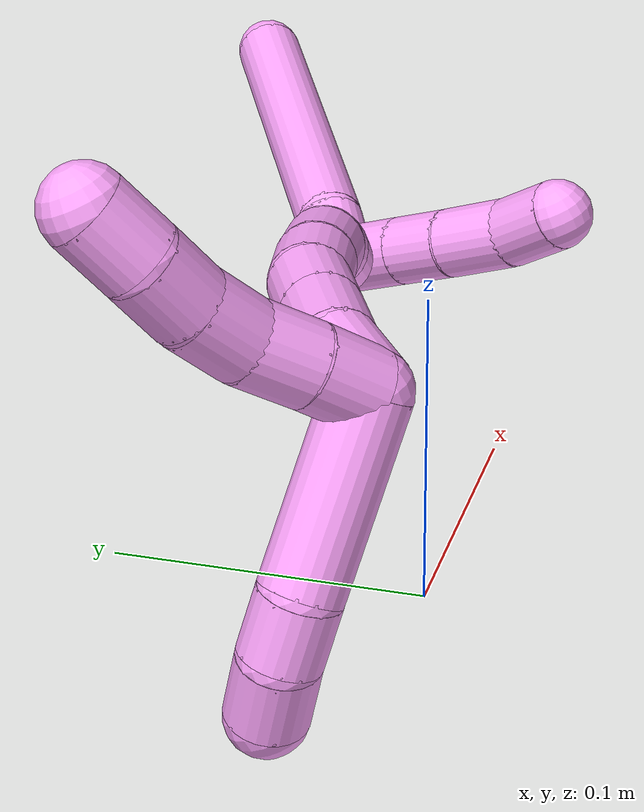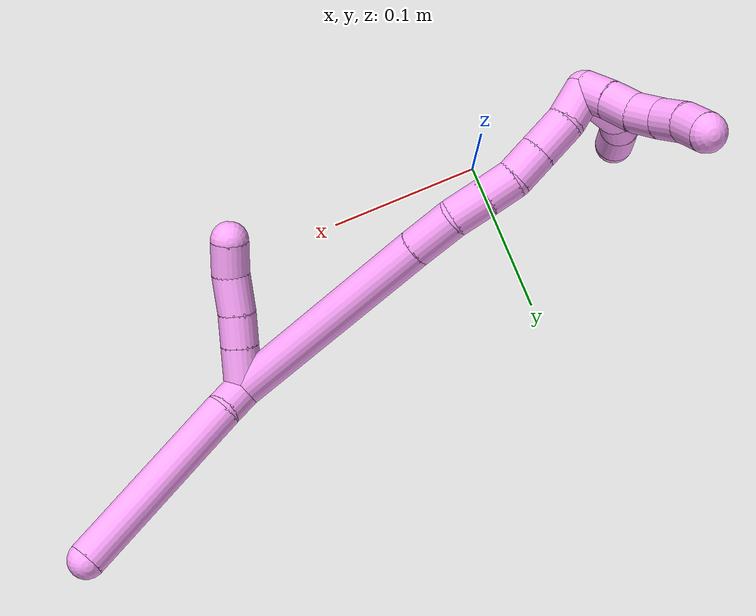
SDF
<sdf version="1.7">
 <world name="default">
  <model name="4">
   <static>0</static>
   <link name="4">
    <collision name="collision-cylinder-e_1_2_8">
     <pose>0.008221 -0.003827 0.005295 0.625853 0.899298 0.30981</pose>
     <geometry><cylinder><radius>0.0125</radius><length>0.021002</length></cylinder></geometry>
     <surface>
      <friction><ode><mu>1.16</mu><mu2>1.16</mu2><slip1>0</slip1><slip2>0</slip2></ode></friction>
      <contact><ode><kp>1e+06</kp><kd>1</kd><max_vel>0</max_vel><min_depth>0.001</min_depth></ode></contact>
     </surface>
    </collision>
    <visual name="visual-cylinder-e_1_2_8">
     <pose>0.008221 -0.003827 0.005295 0.625853 0.899298 0.30981</pose>
     <geometry><cylinder><radius>0.0125</radius><length>0.021002</length></cylinder></geometry>
     <material><ambient>1 0.65098 0.996078 1</ambient></material>
    </visual>
    <collision name="collision-cylinder-e_2_8_6">
     <pose>0.074339 -0.027514 0.030928 0.7735 1.11438 0.496992</pose>
     <geometry><cylinder><radius>0.0125</radius><length>0.128998</length></cylinder></geometry>
     <surface>
      <friction><ode><mu>1.16</mu><mu2>1.16</mu2><slip1>0</slip1><slip2>0</slip2></ode></friction>
      <contact><ode><kp>1e+06</kp><kd>1</kd><max_vel>0</max_vel><min_depth>0.001</min_depth></ode></contact>
     </surface>
    </collision>
    <visual name="visual-cylinder-e_2_8_6">
     <pose>0.074339 -0.027514 0.030928 0.7735 1.11438 0.496992</pose>
     <geometry><cylinder><radius>0.0125</radius><length>0.128998</length></cylinder></geometry>
     <material><ambient>1 0.65098 0.996078 1</ambient></material>
    </visual>
    <collision name="collision-cylinder-e_1_2_9">
     <pose>-0.012218 -0.008139 -0.000381 1.61755 -0.982642 -1.02205</pose>
     <geometry><cylinder><radius>0.0125</radius><length>0.02937</length></cylinder></geometry>
     <surface>
      <friction><ode><mu>1.16</mu><mu2>1.16</mu2><slip1>0</slip1><slip2>0</slip2></ode></friction>
      <contact><ode><kp>1e+06</kp><kd>1</kd><max_vel>0</max_vel><min_depth>0.001</min_depth></ode></contact>
     </surface>
    </collision>
    <visual name="visual-cylinder-e_1_2_9">
     <pose>-0.012218 -0.008139 -0.000381 1.61755 -0.982642 -1.02205</pose>
     <geometry><cylinder><radius>0.0125</radius><length>0.02937</length></cylinder></geometry>
     <material><ambient>1 0.65098 0.996078 1</ambient></material>
    </visual>
    <collision name="collision-cylinder-e_2_9_10">
     <pose>-0.033426 -0.022262 -0.001052 1.61931 -0.982961 -1.02389</pose>
     <geometry><cylinder><radius>0.0125</radius><length>0.021609</length></cylinder></geometry>
     <surface>
      <friction><ode><mu>1.16</mu><mu2>1.16</mu2><slip1>0</slip1><slip2>0</slip2></ode></friction>
      <contact><ode><kp>1e+06</kp><kd>1</kd><max_vel>0</max_vel><min_depth>0.001</min_depth></ode></contact>
     </surface>
    </collision>
    <visual name="visual-cylinder-e_2_9_10">
     <pose>-0.033426 -0.022262 -0.001052 1.61931 -0.982961 -1.02389</pose>
     <geometry><cylinder><radius>0.0125</radius><length>0.021609</length></cylinder></geometry>
     <material><ambient>1 0.65098 0.996078 1</ambient></material>
    </visual>
    <collision name="collision-cylinder-e_3_10_11">
     <pose>-0.05271 -0.036206 -0.001853 1.63483 -0.911609 -0.963243</pose>
     <geometry><cylinder><radius>0.0125</radius><length>0.026044</length></cylinder></geometry>
     <surface>
      <friction><ode><mu>1.16</mu><mu2>1.16</mu2><slip1>0</slip1><slip2>0</slip2></ode></friction>
      <contact><ode><kp>1e+06</kp><kd>1</kd><max_vel>0</max_vel><min_depth>0.001</min_depth></ode></contact>
     </surface>
    </collision>
    <visual name="visual-cylinder-e_3_10_11">
     <pose>-0.05271 -0.036206 -0.001853 1.63483 -0.911609 -0.963243</pose>
     <geometry><cylinder><radius>0.0125</radius><length>0.026044</length></cylinder></geometry>
     <material><ambient>1 0.65098 0.996078 1</ambient></material>
    </visual>
    <collision name="collision-cylinder-e_4_11_5">
     <pose>-0.072623 -0.050181 -0.000553 1.27845 -0.9922 -0.765034</pose>
     <geometry><cylinder><radius>0.0125</radius><length>0.022977</length></cylinder></geometry>
     <surface>
      <friction><ode><mu>1.16</mu><mu2>1.16</mu2><slip1>0</slip1><slip2>0</slip2></ode></friction>
      <contact><ode><kp>1e+06</kp><kd>1</kd><max_vel>0</max_vel><min_depth>0.001</min_depth></ode></contact>
     </surface>
    </collision>
    <visual name="visual-cylinder-e_4_11_5">
     <pose>-0.072623 -0.050181 -0.000553 1.27845 -0.9922 -0.765034</pose>
     <geometry><cylinder><radius>0.0125</radius><length>0.022977</length></cylinder></geometry>
     <material><ambient>1 0.65098 0.996078 1</ambient></material>
    </visual>
    <collision name="collision-cylinder-e_1_2_12">
     <pose>-0.069131 0.019422 0.025522 -0.650498 -1.13643 0.42413</pose>
     <geometry><cylinder><radius>0.0125</radius><length>0.152416</length></cylinder></geometry>
     <surface>
      <friction><ode><mu>1.16</mu><mu2>1.16</mu2><slip1>0</slip1><slip2>0</slip2></ode></friction>
      <contact><ode><kp>1e+06</kp><kd>1</kd><max_vel>0</max_vel><min_depth>0.001</min_depth></ode></contact>
     </surface>
    </collision>
    <visual name="visual-cylinder-e_1_2_12">
     <pose>-0.069131 0.019422 0.025522 -0.650498 -1.13643 0.42413</pose>
     <geometry><cylinder><radius>0.0125</radius><length>0.152416</length></cylinder></geometry>
     <material><ambient>1 0.65098 0.996078 1</ambient></material>
    </visual>
    <collision name="collision-cylinder-e_2_12_13">
     <pose>-0.152406 0.043107 0.056405 -0.671778 -1.1198 0.430868</pose>
     <geometry><cylinder><radius>0.0125</radius><length>0.031432</length></cylinder></geometry>
     <surface>
      <friction><ode><mu>1.16</mu><mu2>1.16</mu2><slip1>0</slip1><slip2>0</slip2></ode></friction>
      <contact><ode><kp>1e+06</kp><kd>1</kd><max_vel>0</max_vel><min_depth>0.001</min_depth></ode></contact>
     </surface>
    </collision>
    <visual name="visual-cylinder-e_2_12_13">
     <pose>-0.152406 0.043107 0.056405 -0.671778 -1.1198 0.430868</pose>
     <geometry><cylinder><radius>0.0125</radius><length>0.031432</length></cylinder></geometry>
     <material><ambient>1 0.65098 0.996078 1</ambient></material>
    </visual>
    <collision name="collision-cylinder-e_3_13_14">
     <pose>-0.177097 0.052455 0.063731 -1.20214 -1.0937 0.790907</pose>
     <geometry><cylinder><radius>0.0125</radius><length>0.023743</length></cylinder></geometry>
     <surface>
      <friction><ode><mu>1.16</mu><mu2>1.16</mu2><slip1>0</slip1><slip2>0</slip2></ode></friction>
      <contact><ode><kp>1e+06</kp><kd>1</kd><max_vel>0</max_vel><min_depth>0.001</min_depth></ode></contact>
     </surface>
    </collision>
    <visual name="visual-cylinder-e_3_13_14">
     <pose>-0.177097 0.052455 0.063731 -1.20214 -1.0937 0.790907</pose>
     <geometry><cylinder><radius>0.0125</radius><length>0.023743</length></cylinder></geometry>
     <material><ambient>1 0.65098 0.996078 1</ambient></material>
    </visual>
    <collision name="collision-cylinder-e_4_14_15">
     <pose>-0.196789 0.062161 0.066335 -1.43319 -1.09918 0.980273</pose>
     <geometry><cylinder><radius>0.0125</radius><length>0.020534</length></cylinder></geometry>
     <surface>
      <friction><ode><mu>1.16</mu><mu2>1.16</mu2><slip1>0</slip1><slip2>0</slip2></ode></friction>
      <contact><ode><kp>1e+06</kp><kd>1</kd><max_vel>0</max_vel><min_depth>0.001</min_depth></ode></contact>
     </surface>
    </collision>
    <visual name="visual-cylinder-e_4_14_15">
     <pose>-0.196789 0.062161 0.066335 -1.43319 -1.09918 0.980273</pose>
     <geometry><cylinder><radius>0.0125</radius><length>0.020534</length></cylinder></geometry>
     <material><ambient>1 0.65098 0.996078 1</ambient></material>
    </visual>
    <collision name="collision-cylinder-e_5_15_16">
     <pose>-0.216593 0.069748 0.06574 -1.96515 -1.27791 1.67841</pose>
     <geometry><cylinder><radius>0.0125</radius><length>0.022264</length></cylinder></geometry>
     <surface>
      <friction><ode><mu>1.16</mu><mu2>1.16</mu2><slip1>0</slip1><slip2>0</slip2></ode></friction>
      <contact><ode><kp>1e+06</kp><kd>1</kd><max_vel>0</max_vel><min_depth>0.001</min_depth></ode></contact>
     </surface>
    </collision>
    <visual name="visual-cylinder-e_5_15_16">
     <pose>-0.216593 0.069748 0.06574 -1.96515 -1.27791 1.67841</pose>
     <geometry><cylinder><radius>0.0125</radius><length>0.022264</length></cylinder></geometry>
     <material><ambient>1 0.65098 0.996078 1</ambient></material>
    </visual>
    <collision name="collision-cylinder-e_6_16_17">
     <pose>-0.23956 0.076143 0.063082 -1.96427 -1.27796 1.67752</pose>
     <geometry><cylinder><radius>0.0125</radius><length>0.025713</length></cylinder></geometry>
     <surface>
      <friction><ode><mu>1.16</mu><mu2>1.16</mu2><slip1>0</slip1><slip2>0</slip2></ode></friction>
      <contact><ode><kp>1e+06</kp><kd>1</kd><max_vel>0</max_vel><min_depth>0.001</min_depth></ode></contact>
     </surface>
    </collision>
    <visual name="visual-cylinder-e_6_16_17">
     <pose>-0.23956 0.076143 0.063082 -1.96427 -1.27796 1.67752</pose>
     <geometry><cylinder><radius>0.0125</radius><length>0.025713</length></cylinder></geometry>
     <material><ambient>1 0.65098 0.996078 1</ambient></material>
    </visual>
    <collision name="collision-cylinder-e_7_17_1">
     <pose>-0.263257 0.080927 0.058301 -2.75797 -1.26287 2.62248</pose>
     <geometry><cylinder><radius>0.0125</radius><length>0.023898</length></cylinder></geometry>
     <surface>
      <friction><ode><mu>1.16</mu><mu2>1.16</mu2><slip1>0</slip1><slip2>0</slip2></ode></friction>
      <contact><ode><kp>1e+06</kp><kd>1</kd><max_vel>0</max_vel><min_depth>0.001</min_depth></ode></contact>
     </surface>
    </collision>
    <visual name="visual-cylinder-e_7_17_1">
     <pose>-0.263257 0.080927 0.058301 -2.75797 -1.26287 2.62248</pose>
     <geometry><cylinder><radius>0.0125</radius><length>0.023898</length></cylinder></geometry>
     <material><ambient>1 0.65098 0.996078 1</ambient></material>
    </visual>
    <collision name="collision-cylinder-e_1_1_18">
     <pose>-0.275577 0.088397 0.0628 -0.661289 -0.093494 0.032112</pose>
     <geometry><cylinder><radius>0.0125</radius><length>0.02</length></cylinder></geometry>
     <surface>
      <friction><ode><mu>1.16</mu><mu2>1.16</mu2><slip1>0</slip1><slip2>0</slip2></ode></friction>
      <contact><ode><kp>1e+06</kp><kd>1</kd><max_vel>0</max_vel><min_depth>0.001</min_depth></ode></contact>
     </surface>
    </collision>
    <visual name="visual-cylinder-e_1_1_18">
     <pose>-0.275577 0.088397 0.0628 -0.661289 -0.093494 0.032112</pose>
     <geometry><cylinder><radius>0.0125</radius><length>0.02</length></cylinder></geometry>
     <material><ambient>1 0.65098 0.996078 1</ambient></material>
    </visual>
    <collision name="collision-cylinder-e_2_18_19">
     <pose>-0.276735 0.100919 0.078332 -0.69577 -0.022414 0.008128</pose>
     <geometry><cylinder><radius>0.0125</radius><length>0.02</length></cylinder></geometry>
     <surface>
      <friction><ode><mu>1.16</mu><mu2>1.16</mu2><slip1>0</slip1><slip2>0</slip2></ode></friction>
      <contact><ode><kp>1e+06</kp><kd>1</kd><max_vel>0</max_vel><min_depth>0.001</min_depth></ode></contact>
     </surface>
    </collision>
    <visual name="visual-cylinder-e_2_18_19">
     <pose>-0.276735 0.100919 0.078332 -0.69577 -0.022414 0.008128</pose>
     <geometry><cylinder><radius>0.0125</radius><length>0.02</length></cylinder></geometry>
     <material><ambient>1 0.65098 0.996078 1</ambient></material>
    </visual>
    <collision name="collision-cylinder-e_3_19_20">
     <pose>-0.278871 0.112191 0.094532 -0.518357 -0.192342 0.051145</pose>
     <geometry><cylinder><radius>0.0125</radius><length>0.02</length></cylinder></geometry>
     <surface>
      <friction><ode><mu>1.16</mu><mu2>1.16</mu2><slip1>0</slip1><slip2>0</slip2></ode></friction>
      <contact><ode><kp>1e+06</kp><kd>1</kd><max_vel>0</max_vel><min_depth>0.001</min_depth></ode></contact>
     </surface>
    </collision>
    <visual name="visual-cylinder-e_3_19_20">
     <pose>-0.278871 0.112191 0.094532 -0.518357 -0.192342 0.051145</pose>
     <geometry><cylinder><radius>0.0125</radius><length>0.02</length></cylinder></geometry>
     <material><ambient>1 0.65098 0.996078 1</ambient></material>
    </visual>
    <collision name="collision-cylinder-e_4_20_21">
     <pose>-0.282871 0.120485 0.112216 -0.358465 -0.210394 0.038255</pose>
     <geometry><cylinder><radius>0.0125</radius><length>0.02</length></cylinder></geometry>
     <surface>
      <friction><ode><mu>1.16</mu><mu2>1.16</mu2><slip1>0</slip1><slip2>0</slip2></ode></friction>
      <contact><ode><kp>1e+06</kp><kd>1</kd><max_vel>0</max_vel><min_depth>0.001</min_depth></ode></contact>
     </surface>
    </collision>
    <visual name="visual-cylinder-e_4_20_21">
     <pose>-0.282871 0.120485 0.112216 -0.358465 -0.210394 0.038255</pose>
     <geometry><cylinder><radius>0.0125</radius><length>0.02</length></cylinder></geometry>
     <material><ambient>1 0.65098 0.996078 1</ambient></material>
    </visual>
    <collision name="collision-cylinder-e_5_21_4">
     <pose>-0.284983 0.127294 0.130785 -0.344624 -0.002381 0.000414</pose>
     <geometry><cylinder><radius>0.0125</radius><length>0.02</length></cylinder></geometry>
     <surface>
      <friction><ode><mu>1.16</mu><mu2>1.16</mu2><slip1>0</slip1><slip2>0</slip2></ode></friction>
      <contact><ode><kp>1e+06</kp><kd>1</kd><max_vel>0</max_vel><min_depth>0.001</min_depth></ode></contact>
     </surface>
    </collision>
    <visual name="visual-cylinder-e_5_21_4">
     <pose>-0.284983 0.127294 0.130785 -0.344624 -0.002381 0.000414</pose>
     <geometry><cylinder><radius>0.0125</radius><length>0.02</length></cylinder></geometry>
     <material><ambient>1 0.65098 0.996078 1</ambient></material>
    </visual>
    <collision name="collision-cylinder-e_1_1_22">
     <pose>-0.273579 0.103075 0.034563 -2.34615 0.036562 -0.086984</pose>
     <geometry><cylinder><radius>0.0125</radius><length>0.058269</length></cylinder></geometry>
     <surface>
      <friction><ode><mu>1.16</mu><mu2>1.16</mu2><slip1>0</slip1><slip2>0</slip2></ode></friction>
      <contact><ode><kp>1e+06</kp><kd>1</kd><max_vel>0</max_vel><min_depth>0.001</min_depth></ode></contact>
     </surface>
    </collision>
    <visual name="visual-cylinder-e_1_1_22">
     <pose>-0.273579 0.103075 0.034563 -2.34615 0.036562 -0.086984</pose>
     <geometry><cylinder><radius>0.0125</radius><length>0.058269</length></cylinder></geometry>
     <material><ambient>1 0.65098 0.996078 1</ambient></material>
    </visual>
    <collision name="collision-cylinder-e_2_22_23">
     <pose>-0.269875 0.12997 0.006529 -2.46866 0.263248 -0.723685</pose>
     <geometry><cylinder><radius>0.0125</radius><length>0.020277</length></cylinder></geometry>
     <surface>
      <friction><ode><mu>1.16</mu><mu2>1.16</mu2><slip1>0</slip1><slip2>0</slip2></ode></friction>
      <contact><ode><kp>1e+06</kp><kd>1</kd><max_vel>0</max_vel><min_depth>0.001</min_depth></ode></contact>
     </surface>
    </collision>
    <visual name="visual-cylinder-e_2_22_23">
     <pose>-0.269875 0.12997 0.006529 -2.46866 0.263248 -0.723685</pose>
     <geometry><cylinder><radius>0.0125</radius><length>0.020277</length></cylinder></geometry>
     <material><ambient>1 0.65098 0.996078 1</ambient></material>
    </visual>
    <collision name="collision-cylinder-e_3_23_3">
     <pose>-0.262248 0.14039 -0.009583 -2.66942 0.483804 -1.59608</pose>
     <geometry><cylinder><radius>0.0125</radius><length>0.021454</length></cylinder></geometry>
     <surface>
      <friction><ode><mu>1.16</mu><mu2>1.16</mu2><slip1>0</slip1><slip2>0</slip2></ode></friction>
      <contact><ode><kp>1e+06</kp><kd>1</kd><max_vel>0</max_vel><min_depth>0.001</min_depth></ode></contact>
     </surface>
    </collision>
    <visual name="visual-cylinder-e_3_23_3">
     <pose>-0.262248 0.14039 -0.009583 -2.66942 0.483804 -1.59608</pose>
     <geometry><cylinder><radius>0.0125</radius><length>0.021454</length></cylinder></geometry>
     <material><ambient>1 0.65098 0.996078 1</ambient></material>
    </visual>
    <collision name="collision-sphere-3">
     <pose>-0.257258 0.144709 -0.01804 0 -0 0</pose>
     <geometry><sphere><radius>0.0125</radius></sphere></geometry>
     <surface>
      <friction><ode><mu>1.16</mu><mu2>1.16</mu2><slip1>0</slip1><slip2>0</slip2></ode></friction>
      <contact><ode><kp>1e+06</kp><kd>1</kd><max_vel>0</max_vel><min_depth>0.001</min_depth></ode></contact>
     </surface>
    </collision>
    <visual name="visual-sphere-3">
     <pose>-0.257258 0.144709 -0.01804 0 -0 0</pose>
     <geometry><sphere><radius>0.0125</radius></sphere></geometry>
     <material><ambient>1 0.65098 0.996078 1</ambient></material>
    </visual>
    <collision name="collision-sphere-23">
     <pose>-0.267237 0.136072 -0.001127 0 -0 0</pose>
     <geometry><sphere><radius>0.0125</radius></sphere></geometry>
     <surface>
      <friction><ode><mu>1.16</mu><mu2>1.16</mu2><slip1>0</slip1><slip2>0</slip2></ode></friction>
      <contact><ode><kp>1e+06</kp><kd>1</kd><max_vel>0</max_vel><min_depth>0.001</min_depth></ode></contact>
     </surface>
    </collision>
    <visual name="visual-sphere-23">
     <pose>-0.267237 0.136072 -0.001127 0 -0 0</pose>
     <geometry><sphere><radius>0.0125</radius></sphere></geometry>
     <material><ambient>1 0.65098 0.996078 1</ambient></material>
    </visual>
    <collision name="collision-sphere-22">
     <pose>-0.272514 0.123869 0.014184 0 -0 0</pose>
     <geometry><sphere><radius>0.0125</radius></sphere></geometry>
     <surface>
      <friction><ode><mu>1.16</mu><mu2>1.16</mu2><slip1>0</slip1><slip2>0</slip2></ode></friction>
      <contact><ode><kp>1e+06</kp><kd>1</kd><max_vel>0</max_vel><min_depth>0.001</min_depth></ode></contact>
     </surface>
    </collision>
    <visual name="visual-sphere-22">
     <pose>-0.272514 0.123869 0.014184 0 -0 0</pose>
     <geometry><sphere><radius>0.0125</radius></sphere></geometry>
     <material><ambient>1 0.65098 0.996078 1</ambient></material>
    </visual>
    <collision name="collision-sphere-4">
     <pose>-0.285007 0.130673 0.140197 0 -0 0</pose>
     <geometry><sphere><radius>0.0125</radius></sphere></geometry>
     <surface>
      <friction><ode><mu>1.16</mu><mu2>1.16</mu2><slip1>0</slip1><slip2>0</slip2></ode></friction>
      <contact><ode><kp>1e+06</kp><kd>1</kd><max_vel>0</max_vel><min_depth>0.001</min_depth></ode></contact>
     </surface>
    </collision>
    <visual name="visual-sphere-4">
     <pose>-0.285007 0.130673 0.140197 0 -0 0</pose>
     <geometry><sphere><radius>0.0125</radius></sphere></geometry>
     <material><ambient>1 0.65098 0.996078 1</ambient></material>
    </visual>
    <collision name="collision-sphere-21">
     <pose>-0.284959 0.123916 0.121373 0 -0 0</pose>
     <geometry><sphere><radius>0.0125</radius></sphere></geometry>
     <surface>
      <friction><ode><mu>1.16</mu><mu2>1.16</mu2><slip1>0</slip1><slip2>0</slip2></ode></friction>
      <contact><ode><kp>1e+06</kp><kd>1</kd><max_vel>0</max_vel><min_depth>0.001</min_depth></ode></contact>
     </surface>
    </collision>
    <visual name="visual-sphere-21">
     <pose>-0.284959 0.123916 0.121373 0 -0 0</pose>
     <geometry><sphere><radius>0.0125</radius></sphere></geometry>
     <material><ambient>1 0.65098 0.996078 1</ambient></material>
    </visual>
    <collision name="collision-sphere-20">
     <pose>-0.280782 0.117054 0.103058 0 -0 0</pose>
     <geometry><sphere><radius>0.0125</radius></sphere></geometry>
     <surface>
      <friction><ode><mu>1.16</mu><mu2>1.16</mu2><slip1>0</slip1><slip2>0</slip2></ode></friction>
      <contact><ode><kp>1e+06</kp><kd>1</kd><max_vel>0</max_vel><min_depth>0.001</min_depth></ode></contact>
     </surface>
    </collision>
    <visual name="visual-sphere-20">
     <pose>-0.280782 0.117054 0.103058 0 -0 0</pose>
     <geometry><sphere><radius>0.0125</radius></sphere></geometry>
     <material><ambient>1 0.65098 0.996078 1</ambient></material>
    </visual>
    <collision name="collision-sphere-11">
     <pose>-0.063004 -0.044165 -0.002363 0 -0 0</pose>
     <geometry><sphere><radius>0.0125</radius></sphere></geometry>
     <surface>
      <friction><ode><mu>1.16</mu><mu2>1.16</mu2><slip1>0</slip1><slip2>0</slip2></ode></friction>
      <contact><ode><kp>1e+06</kp><kd>1</kd><max_vel>0</max_vel><min_depth>0.001</min_depth></ode></contact>
     </surface>
    </collision>
    <visual name="visual-sphere-11">
     <pose>-0.063004 -0.044165 -0.002363 0 -0 0</pose>
     <geometry><sphere><radius>0.0125</radius></sphere></geometry>
     <material><ambient>1 0.65098 0.996078 1</ambient></material>
    </visual>
    <collision name="collision-sphere-10">
     <pose>-0.042417 -0.028247 -0.001343 0 -0 0</pose>
     <geometry><sphere><radius>0.0125</radius></sphere></geometry>
     <surface>
      <friction><ode><mu>1.16</mu><mu2>1.16</mu2><slip1>0</slip1><slip2>0</slip2></ode></friction>
      <contact><ode><kp>1e+06</kp><kd>1</kd><max_vel>0</max_vel><min_depth>0.001</min_depth></ode></contact>
     </surface>
    </collision>
    <visual name="visual-sphere-10">
     <pose>-0.042417 -0.028247 -0.001343 0 -0 0</pose>
     <geometry><sphere><radius>0.0125</radius></sphere></geometry>
     <material><ambient>1 0.65098 0.996078 1</ambient></material>
    </visual>
    <collision name="collision-sphere-6">
     <pose>0.132236 -0.047375 0.051267 0 -0 0</pose>
     <geometry><sphere><radius>0.0125</radius></sphere></geometry>
     <surface>
      <friction><ode><mu>1.16</mu><mu2>1.16</mu2><slip1>0</slip1><slip2>0</slip2></ode></friction>
      <contact><ode><kp>1e+06</kp><kd>1</kd><max_vel>0</max_vel><min_depth>0.001</min_depth></ode></contact>
     </surface>
    </collision>
    <visual name="visual-sphere-6">
     <pose>0.132236 -0.047375 0.051267 0 -0 0</pose>
     <geometry><sphere><radius>0.0125</radius></sphere></geometry>
     <material><ambient>1 0.65098 0.996078 1</ambient></material>
    </visual>
    <collision name="collision-sphere-9">
     <pose>-0.024435 -0.016278 -0.000762 0 -0 0</pose>
     <geometry><sphere><radius>0.0125</radius></sphere></geometry>
     <surface>
      <friction><ode><mu>1.16</mu><mu2>1.16</mu2><slip1>0</slip1><slip2>0</slip2></ode></friction>
      <contact><ode><kp>1e+06</kp><kd>1</kd><max_vel>0</max_vel><min_depth>0.001</min_depth></ode></contact>
     </surface>
    </collision>
    <visual name="visual-sphere-9">
     <pose>-0.024435 -0.016278 -0.000762 0 -0 0</pose>
     <geometry><sphere><radius>0.0125</radius></sphere></geometry>
     <material><ambient>1 0.65098 0.996078 1</ambient></material>
    </visual>
    <collision name="collision-sphere-2">
     <geometry><sphere><radius>0.0125</radius></sphere></geometry>
     <surface>
      <friction><ode><mu>1.16</mu><mu2>1.16</mu2><slip1>0</slip1><slip2>0</slip2></ode></friction>
      <contact><ode><kp>1e+06</kp><kd>1</kd><max_vel>0</max_vel><min_depth>0.001</min_depth></ode></contact>
     </surface>
    </collision>
    <visual name="visual-sphere-2">
     <geometry><sphere><radius>0.0125</radius></sphere></geometry>
     <material><ambient>1 0.65098 0.996078 1</ambient></material>
    </visual>
    <collision name="collision-sphere-19">
     <pose>-0.276959 0.107327 0.086005 0 -0 0</pose>
     <geometry><sphere><radius>0.0125</radius></sphere></geometry>
     <surface>
      <friction><ode><mu>1.16</mu><mu2>1.16</mu2><slip1>0</slip1><slip2>0</slip2></ode></friction>
      <contact><ode><kp>1e+06</kp><kd>1</kd><max_vel>0</max_vel><min_depth>0.001</min_depth></ode></contact>
     </surface>
    </collision>
    <visual name="visual-sphere-19">
     <pose>-0.276959 0.107327 0.086005 0 -0 0</pose>
     <geometry><sphere><radius>0.0125</radius></sphere></geometry>
     <material><ambient>1 0.65098 0.996078 1</ambient></material>
    </visual>
    <collision name="collision-sphere-8">
     <pose>0.016442 -0.007654 0.01059 0 -0 0</pose>
     <geometry><sphere><radius>0.0125</radius></sphere></geometry>
     <surface>
      <friction><ode><mu>1.16</mu><mu2>1.16</mu2><slip1>0</slip1><slip2>0</slip2></ode></friction>
      <contact><ode><kp>1e+06</kp><kd>1</kd><max_vel>0</max_vel><min_depth>0.001</min_depth></ode></contact>
     </surface>
    </collision>
    <visual name="visual-sphere-8">
     <pose>0.016442 -0.007654 0.01059 0 -0 0</pose>
     <geometry><sphere><radius>0.0125</radius></sphere></geometry>
     <material><ambient>1 0.65098 0.996078 1</ambient></material>
    </visual>
    <collision name="collision-sphere-5">
     <pose>-0.082241 -0.056197 0.001258 0 -0 0</pose>
     <geometry><sphere><radius>0.0125</radius></sphere></geometry>
     <surface>
      <friction><ode><mu>1.16</mu><mu2>1.16</mu2><slip1>0</slip1><slip2>0</slip2></ode></friction>
      <contact><ode><kp>1e+06</kp><kd>1</kd><max_vel>0</max_vel><min_depth>0.001</min_depth></ode></contact>
     </surface>
    </collision>
    <visual name="visual-sphere-5">
     <pose>-0.082241 -0.056197 0.001258 0 -0 0</pose>
     <geometry><sphere><radius>0.0125</radius></sphere></geometry>
     <material><ambient>1 0.65098 0.996078 1</ambient></material>
    </visual>
    <collision name="collision-sphere-12">
     <pose>-0.138262 0.038843 0.051043 0 -0 0</pose>
     <geometry><sphere><radius>0.0125</radius></sphere></geometry>
     <surface>
      <friction><ode><mu>1.16</mu><mu2>1.16</mu2><slip1>0</slip1><slip2>0</slip2></ode></friction>
      <contact><ode><kp>1e+06</kp><kd>1</kd><max_vel>0</max_vel><min_depth>0.001</min_depth></ode></contact>
     </surface>
    </collision>
    <visual name="visual-sphere-12">
     <pose>-0.138262 0.038843 0.051043 0 -0 0</pose>
     <geometry><sphere><radius>0.0125</radius></sphere></geometry>
     <material><ambient>1 0.65098 0.996078 1</ambient></material>
    </visual>
    <collision name="collision-sphere-13">
     <pose>-0.166551 0.04737 0.061766 0 -0 0</pose>
     <geometry><sphere><radius>0.0125</radius></sphere></geometry>
     <surface>
      <friction><ode><mu>1.16</mu><mu2>1.16</mu2><slip1>0</slip1><slip2>0</slip2></ode></friction>
      <contact><ode><kp>1e+06</kp><kd>1</kd><max_vel>0</max_vel><min_depth>0.001</min_depth></ode></contact>
     </surface>
    </collision>
    <visual name="visual-sphere-13">
     <pose>-0.166551 0.04737 0.061766 0 -0 0</pose>
     <geometry><sphere><radius>0.0125</radius></sphere></geometry>
     <material><ambient>1 0.65098 0.996078 1</ambient></material>
    </visual>
    <collision name="collision-sphere-14">
     <pose>-0.187643 0.05754 0.065695 0 -0 0</pose>
     <geometry><sphere><radius>0.0125</radius></sphere></geometry>
     <surface>
      <friction><ode><mu>1.16</mu><mu2>1.16</mu2><slip1>0</slip1><slip2>0</slip2></ode></friction>
      <contact><ode><kp>1e+06</kp><kd>1</kd><max_vel>0</max_vel><min_depth>0.001</min_depth></ode></contact>
     </surface>
    </collision>
    <visual name="visual-sphere-14">
     <pose>-0.187643 0.05754 0.065695 0 -0 0</pose>
     <geometry><sphere><radius>0.0125</radius></sphere></geometry>
     <material><ambient>1 0.65098 0.996078 1</ambient></material>
    </visual>
    <collision name="collision-sphere-15">
     <pose>-0.205935 0.066781 0.066975 0 -0 0</pose>
     <geometry><sphere><radius>0.0125</radius></sphere></geometry>
     <surface>
      <friction><ode><mu>1.16</mu><mu2>1.16</mu2><slip1>0</slip1><slip2>0</slip2></ode></friction>
      <contact><ode><kp>1e+06</kp><kd>1</kd><max_vel>0</max_vel><min_depth>0.001</min_depth></ode></contact>
     </surface>
    </collision>
    <visual name="visual-sphere-15">
     <pose>-0.205935 0.066781 0.066975 0 -0 0</pose>
     <geometry><sphere><radius>0.0125</radius></sphere></geometry>
     <material><ambient>1 0.65098 0.996078 1</ambient></material>
    </visual>
    <collision name="collision-sphere-16">
     <pose>-0.227251 0.072716 0.064505 0 -0 0</pose>
     <geometry><sphere><radius>0.0125</radius></sphere></geometry>
     <surface>
      <friction><ode><mu>1.16</mu><mu2>1.16</mu2><slip1>0</slip1><slip2>0</slip2></ode></friction>
      <contact><ode><kp>1e+06</kp><kd>1</kd><max_vel>0</max_vel><min_depth>0.001</min_depth></ode></contact>
     </surface>
    </collision>
    <visual name="visual-sphere-16">
     <pose>-0.227251 0.072716 0.064505 0 -0 0</pose>
     <geometry><sphere><radius>0.0125</radius></sphere></geometry>
     <material><ambient>1 0.65098 0.996078 1</ambient></material>
    </visual>
    <collision name="collision-sphere-17">
     <pose>-0.25187 0.079571 0.06166 0 -0 0</pose>
     <geometry><sphere><radius>0.0125</radius></sphere></geometry>
     <surface>
      <friction><ode><mu>1.16</mu><mu2>1.16</mu2><slip1>0</slip1><slip2>0</slip2></ode></friction>
      <contact><ode><kp>1e+06</kp><kd>1</kd><max_vel>0</max_vel><min_depth>0.001</min_depth></ode></contact>
     </surface>
    </collision>
    <visual name="visual-sphere-17">
     <pose>-0.25187 0.079571 0.06166 0 -0 0</pose>
     <geometry><sphere><radius>0.0125</radius></sphere></geometry>
     <material><ambient>1 0.65098 0.996078 1</ambient></material>
    </visual>
    <collision name="collision-sphere-1">
     <pose>-0.274644 0.082282 0.054943 0 -0 0</pose>
     <geometry><sphere><radius>0.0125</radius></sphere></geometry>
     <surface>
      <friction><ode><mu>1.16</mu><mu2>1.16</mu2><slip1>0</slip1><slip2>0</slip2></ode></friction>
      <contact><ode><kp>1e+06</kp><kd>1</kd><max_vel>0</max_vel><min_depth>0.001</min_depth></ode></contact>
     </surface>
    </collision>
    <visual name="visual-sphere-1">
     <pose>-0.274644 0.082282 0.054943 0 -0 0</pose>
     <geometry><sphere><radius>0.0125</radius></sphere></geometry>
     <material><ambient>1 0.65098 0.996078 1</ambient></material>
    </visual>
    <collision name="collision-sphere-18">
     <pose>-0.276511 0.094511 0.070658 0 -0 0</pose>
     <geometry><sphere><radius>0.0125</radius></sphere></geometry>
     <surface>
      <friction><ode><mu>1.16</mu><mu2>1.16</mu2><slip1>0</slip1><slip2>0</slip2></ode></friction>
      <contact><ode><kp>1e+06</kp><kd>1</kd><max_vel>0</max_vel><min_depth>0.001</min_depth></ode></contact>
     </surface>
    </collision>
    <visual name="visual-sphere-18">
     <pose>-0.276511 0.094511 0.070658 0 -0 0</pose>
     <geometry><sphere><radius>0.0125</radius></sphere></geometry>
     <material><ambient>1 0.65098 0.996078 1</ambient></material>
    </visual>
    <inertial>
     <pose>-0.120303 0.037967 0.03805 0 -0 0</pose>
     <mass>0.75</mass>
     <inertia>
      <ixx>0.000289</ixx>
      <ixy>0</ixy>
      <ixz>0</ixz>
      <iyy>0.000564</iyy>
      <iyz>0</iyz>
      <izz>9.9e-05</izz>
     </inertia>
    </inertial>
   </link>
   <pose>0.197682 0.080531 0.018224 -0.364964 0.237343 0.647816</pose>
  </model>
 </world>
</sdf>
